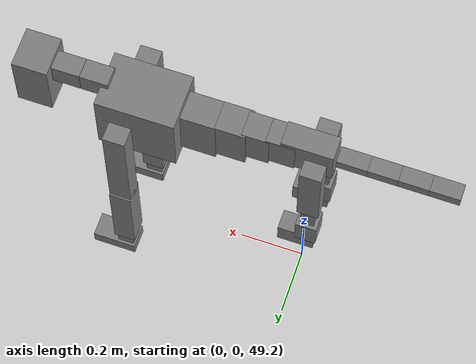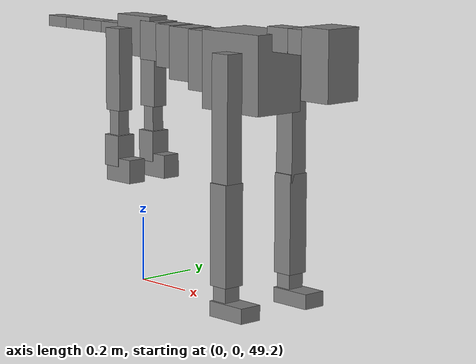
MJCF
<mujoco model="dog">

    <default>
        <joint armature="0.02" stiffness="1" damping="0.2" limited="true"/>
        <geom condim="3" friction="1 0.05 0.05" margin="0.01"/>
        <motor ctrllimited="true" ctrlrange="-1.0 1.0" forcelimited="true" gear="50"/>
    </default>

    <compiler inertiafromgeom="true" angle="radian"/>

    <option timestep="0.016" iterations="50" tolerance="1e-10" solver="Newton" jacobian="dense" cone="pyramidal"/>

    <size nconmax="20000" njmax="60000" nstack="5000000"/>
    <visual>
        <map force="0.1" zfar="30"/>
        <rgba haze="0.15 0.25 0.35 1"/>
        <quality shadowsize="2048"/>
        <global offwidth="800" offheight="800"/>
    </visual>

    <asset>
        <texture type="skybox" builtin="gradient" rgb1="0.3 0.5 0.7" rgb2="0 0 0" width="512" height="512"/>
        <texture name="texplane" type="2d" builtin="checker" rgb1=".2 .3 .4" rgb2=".1 0.15 0.2" width="512" height="512"
                 mark="cross" markrgb=".8 .8 .8"/>
        <texture name="texgeom" type="cube" builtin="flat" mark="cross" width="127" height="1278" rgb1="0.8 0.6 0.4"
                 rgb2="0.8 0.6 0.4" markrgb="1 1 1" random="0.01"/>

        <material name="matplane" reflectance="0.3" texture="texplane" texrepeat="1 1" texuniform="true"/>
        <material name="matgeom" texture="texgeom" texuniform="true" rgba="0.8 0.6 .4 1"/>
    </asset>

    <worldbody>
        <geom name="floor" pos="0 0 0" size="0 0 .25" type="plane" material="matplane" condim="3"/>

        <light directional="false" diffuse=".2 .2 .2" specular="0 0 0" pos="0 0 5" dir="0 0 -1" castshadow="false"/>
        <light mode="targetbodycom" target="torso" directional="false" diffuse=".8 .8 .8" specular="0.3 0.3 0.3"
               pos="0 0 4.0" dir="0 0 -1"/>

        <body name="root" pos="0 0 50">
            <freejoint name="root_1"/>
            <geom type="box" pos="0 0 -0.02" size="0.0774  0.0358  0.063" density="2030"/>

            <body name="spine1" pos="0.054 0 0">
                <joint name="spine1_y" axis="0 1 0" range="0 0.7" limited="true"/>
                <geom type="box" pos="0.02375 0 -0.03" size="0.04375  0.0375  0.05985" density="2030"/>

                <body name="spine2" pos="0.0612 0 0">
                    <joint name="spine2_y" axis="0 1 0" range="-0.15 0.15" limited="true"/>
                    <geom type="box" pos="0.03555  0  -0.04" size="0.04055  0.039  0.06615" density="2030"/>

                    <body name="spine3" pos="0.0730 0 0">
                        <joint name="spine3_y" axis="0 1 0" range="-0.15 0.15" limited="true"/>
                        <geom type="box" pos="0.03555  0  -0.057" size="0.04555  0.0445  0.081" density="2030"/>

                        <body name="spine4" pos="0.0780 0 0">
                            <joint name="spine4_y" axis="0 1 0" range="-0.15 0.15" limited="true"/>
                            <geom type="box" pos="0.05265  0  -0.07" size="0.05265  0.045  0.09135" density="2030"/>

                            <body name="torso" pos="0.1082 0 0">
                                <joint name="torso_y" axis="0 1 0" range="-0.15 0.15" limited="true"/>
                                <geom type="box" pos="0.11925  0  -0.085" size="0.11925  0.085  0.11745"
                                      density="2030"/>

                                <body name="neck1" pos="0.2160  0   0.0180">
                                    <joint name="neck1_y" axis="0 1 0" range="-1.2  -1" limited="true"/>
                                    <geom type="box" pos="0.0423  0  0" size="0.0423  0.03  0.036" density="2325"/>

                                    <body name="neck2" pos="0.0853  0  0">
                                        <joint name="neck2_y" axis="0 1 0" range="0.1  0" limited="true"/>
                                        <geom type="box" pos="0.0423  0  0" size="0.0423  0.03  0.036" density="2325"/>

                                        <body name="head" pos="0.0853  0  0">
                                            <joint name="head_y" axis="0 1 0" range="-0.3  -0.2" limited="true"/>
                                            <geom type="box" pos="0.0531  0  -0.055" size="0.0531  0.06  0.1044"
                                                  density="4030"/>

                                        </body>
                                    </body>
                                </body>

                                <body name="front_shoulder" pos="0.156  0   -0.0480">
                                    <joint name="front_shoulder_y" axis="0 1 0" range="-1 1.5" limited="true"/>
                                    <geom type="box" pos="0 0.13 -0.1756" size="0.0331  0.0283  0.2023" density="1158"/>
                                    <geom type="box" pos="0 -0.13 -0.1756" size="0.0331  0.0283  0.2023"
                                          density="1158"/>

                                    <body name="front_elbow" pos="0  0  -0.3512">
                                        <joint name="front_elbow_y" axis="0 1 0" range="-2 0" limited="true"/>
                                        <geom type="box" pos="0 0.13 -0.1523" size="0.0331  0.0338  0.1523"
                                              density="1081"/>
                                        <geom type="box" pos="0 -0.13 -0.1523" size="0.0331  0.0338  0.1523"
                                              density="1081"/>

                                        <body name="front_wrist" pos="0  0  -0.3045">
                                            <joint name="front_wrist_y" axis="0 1 0" range="-0.2 0" limited="true"/>
                                            <geom type="box" pos="0 0.13 -0.0303" size="0.0254  0.0282  0.0435"
                                                  density="1664"/>
                                            <geom type="box" pos="0 -0.13 -0.0303" size="0.0254  0.0282  0.0435"
                                                  density="1664"/>

                                            <body name="front_finger_end" pos="0  0  -0.0606">
                                                <joint name="front_finger_y" axis="0 1 0" range="-0.4 1"
                                                       limited="true"/>
                                                <geom type="box" pos="0.0368  0.13  -0.0079"
                                                      size="0.0676  0.0368  0.0229" density="1515"/>
                                                <geom type="box" pos="0.0368  -0.13  -0.0079"
                                                      size="0.0676  0.0368  0.0229" density="1515"/>

                                            </body>

                                        </body>
                                    </body>
                                </body>

                            </body>
                        </body>
                    </body>
                </body>
            </body>

            <body name="back_hip" pos="-0.03 0 -0.018">
                <joint name="back_hip_y" axis="0 1 0" range="-1.5 0.3" limited="true"/>
                <geom type="box" pos="0 0.07 -0.1053" size="0.0324  0.0254  0.1281" density="1154"/>
                <geom type="box" pos="0 -0.07 -0.1053" size="0.0324  0.0254  0.1281" density="1154"/>

                <body name="back_knee" pos="0  0  -0.2106">
                    <joint name="back_knee_y" axis="0 1 0" range="0 2.8" limited="true"/>
                    <geom type="box" pos="0 0.07 -0.0556" size="0.0211  0.0208  0.0712" density="1227"/>
                    <geom type="box" pos="0 -0.07 -0.0556" size="0.0211  0.0208  0.0712" density="1227"/>

                    <body name="back_ankle" pos="0  0  -0.1112">
                        <joint name="back_ankle_y" axis="0 1 0" range="-2.2 0" limited="true"/>
                        <geom type="box" pos="0 0.07 -0.0371" size="0.0322  0.0322  0.0484" density="1284"/>
                        <geom type="box" pos="0 -0.07 -0.0371" size="0.0322  0.0322  0.0484" density="1284"/>

                        <body name="back_toe_end" pos="0  0  -0.0742">
                            <joint name="back_toe_y" axis="0 1 0" range="-0.4 1" limited="true"/>
                            <geom type="box" pos="0.0300  0.07  -0.0216" size="0.0550  0.0300  0.0366" density="1515"/>
                            <geom type="box" pos="0.0300  -0.07  -0.0216" size="0.0550  0.0300  0.0366" density="1515"/>

                        </body>
                    </body>
                </body>
            </body>

            <body name="tail1" pos="-0.074 0 -0.006">
                <joint name="tail1_y" axis="0 1 0" range="-0.2 0.2" limited="true"/>
                <geom type="box" pos="-0.0536  0  0" size="0.045  0.025  0.0175" density="1587"/>

                <body name="tail2" pos="-0.09 0 0">
                    <joint name="tail2_y" axis="0 1 0" range="-0.2 0.2" limited="true"/>
                    <geom type="box" pos="-0.0536  0  0" size="0.045  0.025  0.0175" density="1587"/>

                    <body name="tail3" pos="-0.09 0 0">
                        <joint name="tail3_y" axis="0 1 0" range="-0.2 0.2" limited="true"/>
                        <geom type="box" pos="-0.0536  0  0" size="0.045  0.025  0.0175" density="1587"/>

                        <body name="tail4" pos="-0.09 0 0">
                            <joint name="tail4_y" axis="0 1 0" range="-0.2 0.2" limited="true"/>
                            <geom type="box" pos="-0.0536  0  0" size="0.045  0.025  0.0175" density="1587"/>

                        </body>
                    </body>
                </body>
            </body>
        </body>
    </worldbody>

    <actuator>
        <motor joint="spine1_y" forcerange="-150 150     "/>
        <motor joint="spine2_y" forcerange="-150 150     "/>
        <motor joint="spine3_y" forcerange="-150 150     "/>
        <motor joint="spine4_y" forcerange="-150 150     "/>
        <motor joint="torso_y" forcerange="-150 150     "/>
        <motor joint="neck1_y" forcerange="-100 100       "/>
        <motor joint="neck2_y" forcerange="-100 100       "/>
        <motor joint="head_y" forcerange="-150 150       "/>
        <motor joint="front_shoulder_y" forcerange="-176.83 111.87"/>
        <motor joint="front_elbow_y" forcerange="-181.97 164.00"/>
        <motor joint="front_wrist_y" forcerange="-139.13 86.27"/>
        <motor joint="front_finger_y" forcerange="-62.66 93.86"/>
        <motor joint="back_hip_y" forcerange="-296.11 242.35"/>
        <motor joint="back_knee_y" forcerange="-280.26 222.13"/>
        <motor joint="back_angle_y" forcerange="-243.10 172.17"/>
        <motor joint="back_toe_y" forcerange="-121.25 38.92"/>
        <motor joint="tail1_y" forcerange="-50 50     "/>
        <motor joint="tail2_y" forcerange="-50 50     "/>
        <motor joint="tail3_y" forcerange="-50 50     "/>
        <motor joint="tail4_y" forcerange="-50 50     "/>
    </actuator>
</mujoco>
